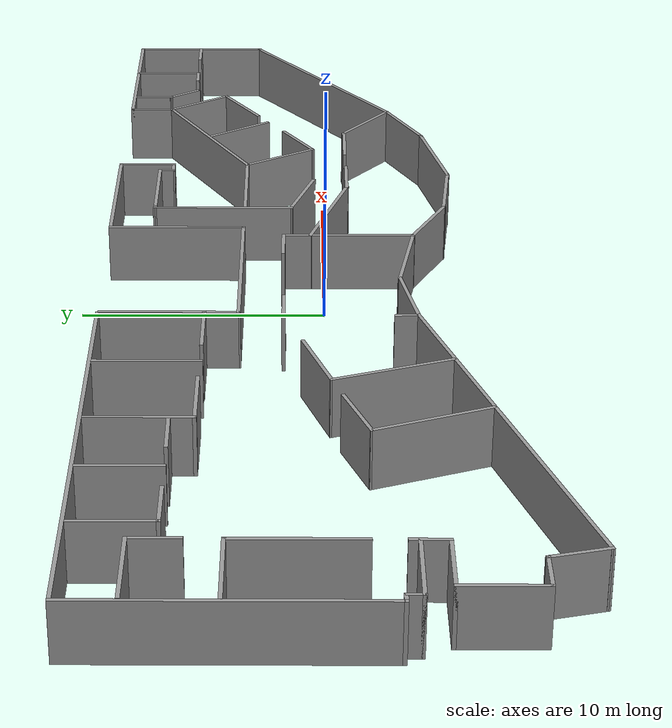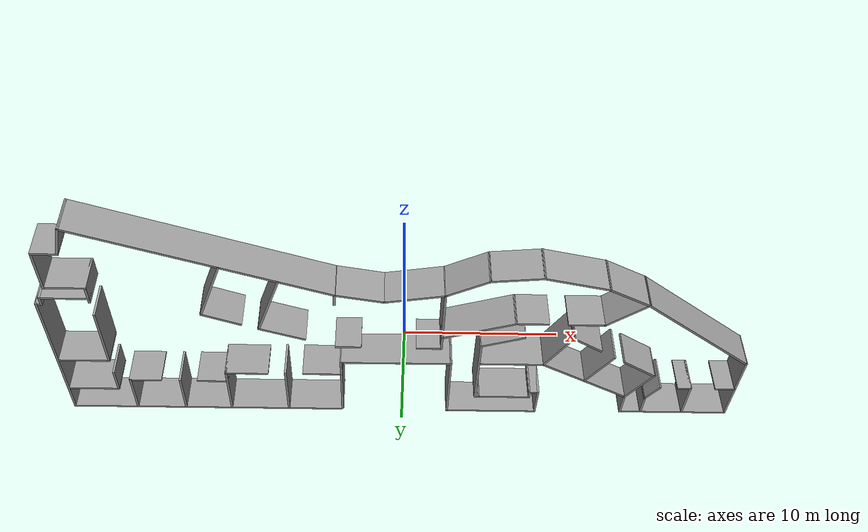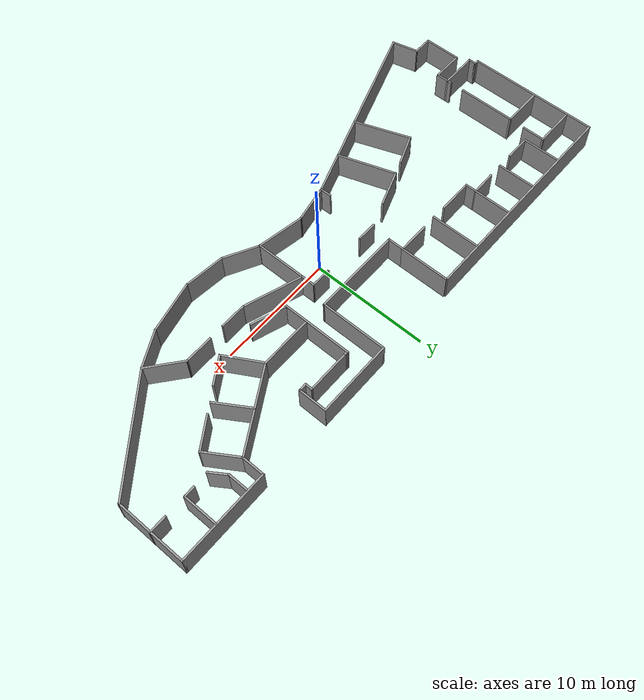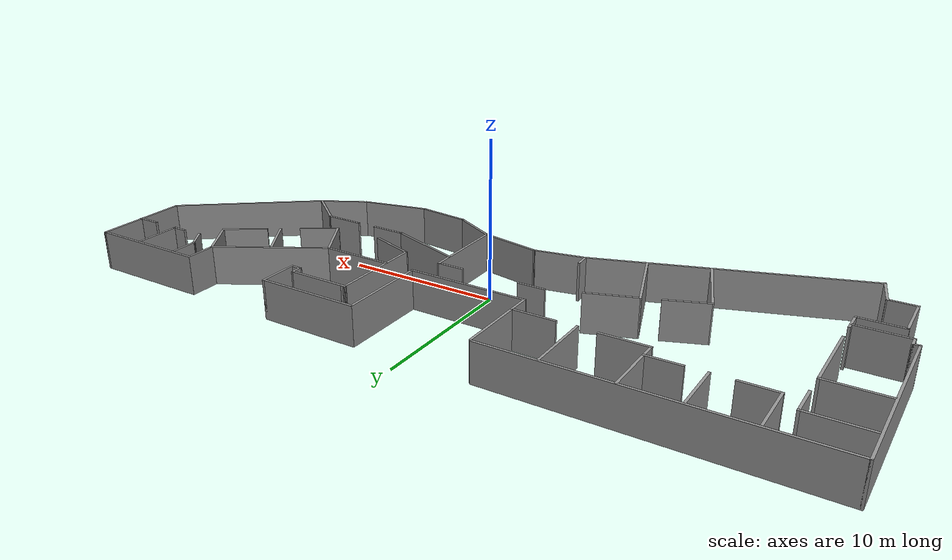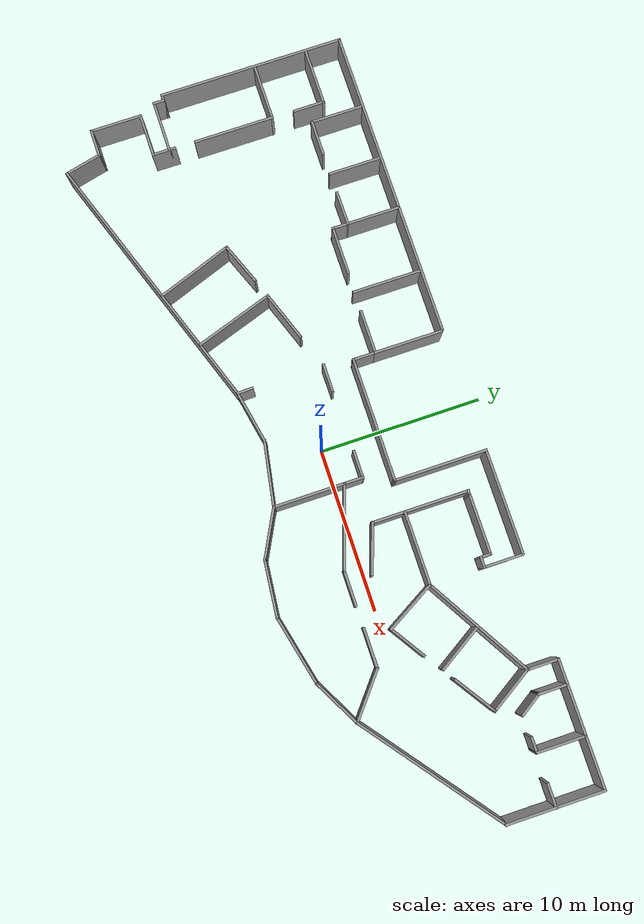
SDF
<?xml version='1.0'?>
<sdf version='1.7'>
  <model name='Office'>
    <pose>-0.008201 -0.15017 0 0 -0 0</pose>
    <link name='Wall_0'>
      <collision name='Wall_0_Collision'>
        <geometry>
          <box>
            <size>1.5 0.15 2.5</size>
          </box>
        </geometry>
        <pose>0 0 1.25 0 -0 0</pose>
      </collision>
      <visual name='Wall_0_Visual'>
        <pose>0 0 1.25 0 -0 0</pose>
        <geometry>
          <box>
            <size>1.5 0.15 2.5</size>
          </box>
        </geometry>
        <material>
          <script>
            <uri>file://media/materials/scripts/gazebo.material</uri>
            <name>Gazebo/Grey</name>
          </script>
          <ambient>1 1 1 1</ambient>
        </material>
        <meta>
          <layer>0</layer>
        </meta>
      </visual>
      <pose>-19.9946 -3.18864 0 0 -0 1.5708</pose>
    </link>
    <link name='Wall_100'>
      <collision name='Wall_100_Collision'>
        <geometry>
          <box>
            <size>4.46792 0.15 2.5</size>
          </box>
        </geometry>
        <pose>0 0 1.25 0 -0 0</pose>
      </collision>
      <visual name='Wall_100_Visual'>
        <pose>0 0 1.25 0 -0 0</pose>
        <geometry>
          <box>
            <size>4.46792 0.15 2.5</size>
          </box>
        </geometry>
        <material>
          <script>
            <uri>file://media/materials/scripts/gazebo.material</uri>
            <name>Gazebo/Grey</name>
          </script>
          <ambient>1 1 1 1</ambient>
        </material>
        <meta>
          <layer>0</layer>
        </meta>
      </visual>
      <pose>10.6963 -4.85422 0 0 -0 0.228635</pose>
    </link>
    <link name='Wall_101'>
      <collision name='Wall_101_Collision'>
        <geometry>
          <box>
            <size>3.29755 0.15 2.5</size>
          </box>
        </geometry>
        <pose>0 0 1.25 0 -0 0</pose>
      </collision>
      <visual name='Wall_101_Visual'>
        <pose>0 0 1.25 0 -0 0</pose>
        <geometry>
          <box>
            <size>3.29755 0.15 2.5</size>
          </box>
        </geometry>
        <material>
          <script>
            <uri>file://media/materials/scripts/gazebo.material</uri>
            <name>Gazebo/Grey</name>
          </script>
          <ambient>1 1 1 1</ambient>
        </material>
        <meta>
          <layer>0</layer>
        </meta>
      </visual>
      <pose>14.1877 -3.6243 0 0 -0 0.489957</pose>
    </link>
    <link name='Wall_103'>
      <collision name='Wall_103_Collision'>
        <geometry>
          <box>
            <size>7.38394 0.15 2.5</size>
          </box>
        </geometry>
        <pose>0 0 1.25 0 -0 0</pose>
      </collision>
      <visual name='Wall_103_Visual'>
        <pose>0 0 1.25 0 -0 0</pose>
        <geometry>
          <box>
            <size>7.38394 0.15 2.5</size>
          </box>
        </geometry>
        <material>
          <script>
            <uri>file://media/materials/scripts/gazebo.material</uri>
            <name>Gazebo/Grey</name>
          </script>
          <ambient>1 1 1 1</ambient>
        </material>
        <meta>
          <layer>0</layer>
        </meta>
      </visual>
      <pose>12.6994 5.35548 0 0 -0 0.533135</pose>
    </link>
    <link name='Wall_104'>
      <collision name='Wall_104_Collision'>
        <geometry>
          <box>
            <size>2 0.15 2.5</size>
          </box>
        </geometry>
        <pose>0 0 1.25 0 -0 0</pose>
      </collision>
      <visual name='Wall_104_Visual'>
        <pose>0 0 1.25 0 -0 0</pose>
        <geometry>
          <box>
            <size>2 0.15 2.5</size>
          </box>
        </geometry>
        <material>
          <script>
            <uri>file://media/materials/scripts/gazebo.material</uri>
            <name>Gazebo/Grey</name>
          </script>
          <ambient>1 1 1 1</ambient>
        </material>
        <meta>
          <layer>0</layer>
        </meta>
      </visual>
      <pose>15.8144 8.11875 0 0 -0 1.5708</pose>
    </link>
    <link name='Wall_105'>
      <collision name='Wall_105_Collision'>
        <geometry>
          <box>
            <size>7.75 0.15 2.5</size>
          </box>
        </geometry>
        <pose>0 0 1.25 0 -0 0</pose>
      </collision>
      <visual name='Wall_105_Visual'>
        <pose>0 0 1.25 0 -0 0</pose>
        <geometry>
          <box>
            <size>7.75 0.15 2.5</size>
          </box>
        </geometry>
        <material>
          <script>
            <uri>file://media/materials/scripts/gazebo.material</uri>
            <name>Gazebo/Grey</name>
          </script>
          <ambient>1 1 1 1</ambient>
        </material>
        <meta>
          <layer>0</layer>
        </meta>
      </visual>
      <pose>19.6144 9.04375 0 0 -0 0</pose>
    </link>
    <link name='Wall_106'>
      <collision name='Wall_106_Collision'>
        <geometry>
          <box>
            <size>6 0.15 2.5</size>
          </box>
        </geometry>
        <pose>0 0 1.25 0 -0 0</pose>
      </collision>
      <visual name='Wall_106_Visual'>
        <pose>0 0 1.25 0 -0 0</pose>
        <geometry>
          <box>
            <size>6 0.15 2.5</size>
          </box>
        </geometry>
        <material>
          <script>
            <uri>file://media/materials/scripts/gazebo.material</uri>
            <name>Gazebo/Grey</name>
          </script>
          <ambient>1 1 1 1</ambient>
        </material>
        <meta>
          <layer>0</layer>
        </meta>
      </visual>
      <pose>23.4144 6.11875 0 0 -0 -1.5708</pose>
    </link>
    <link name='Wall_107'>
      <collision name='Wall_107_Collision'>
        <geometry>
          <box>
            <size>10.0682 0.15 2.5</size>
          </box>
        </geometry>
        <pose>0 0 1.25 0 -0 0</pose>
      </collision>
      <visual name='Wall_107_Visual'>
        <pose>0 0 1.25 0 -0 0</pose>
        <geometry>
          <box>
            <size>10.0682 0.15 2.5</size>
          </box>
        </geometry>
        <material>
          <script>
            <uri>file://media/materials/scripts/gazebo.material</uri>
            <name>Gazebo/Grey</name>
          </script>
          <ambient>1 1 1 1</ambient>
        </material>
        <meta>
          <layer>0</layer>
        </meta>
      </visual>
      <pose>19.4954 0.155029 0 0 -0 -2.48205</pose>
    </link>
    <link name='Wall_109'>
      <collision name='Wall_109_Collision'>
        <geometry>
          <box>
            <size>1.5 0.15 2.5</size>
          </box>
        </geometry>
        <pose>0 0 1.25 0 -0 0</pose>
      </collision>
      <visual name='Wall_109_Visual'>
        <pose>0 0 1.25 0 -0 0</pose>
        <geometry>
          <box>
            <size>1.5 0.15 2.5</size>
          </box>
        </geometry>
        <material>
          <script>
            <uri>file://media/materials/scripts/gazebo.material</uri>
            <name>Gazebo/Grey</name>
          </script>
          <ambient>1 1 1 1</ambient>
        </material>
        <meta>
          <layer>0</layer>
        </meta>
      </visual>
      <pose>22.757 6.13575 0 0 -0 3.14159</pose>
    </link>
    <link name='Wall_11'>
      <collision name='Wall_11_Collision'>
        <geometry>
          <box>
            <size>2 0.15 2.5</size>
          </box>
        </geometry>
        <pose>0 0 1.25 0 -0 0</pose>
      </collision>
      <visual name='Wall_11_Visual'>
        <pose>0 0 1.25 0 -0 0</pose>
        <geometry>
          <box>
            <size>2 0.15 2.5</size>
          </box>
        </geometry>
        <material>
          <script>
            <uri>file://media/materials/scripts/gazebo.material</uri>
            <name>Gazebo/Grey</name>
          </script>
          <ambient>1 1 1 1</ambient>
        </material>
        <meta>
          <layer>0</layer>
        </meta>
      </visual>
      <pose>-19.9418 5.9961 0 0 -0 1.5708</pose>
    </link>
    <link name='Wall_111'>
      <collision name='Wall_111_Collision'>
        <geometry>
          <box>
            <size>3 0.15 2.5</size>
          </box>
        </geometry>
        <pose>0 0 1.25 0 -0 0</pose>
      </collision>
      <visual name='Wall_111_Visual'>
        <pose>0 0 1.25 0 -0 0</pose>
        <geometry>
          <box>
            <size>3 0.15 2.5</size>
          </box>
        </geometry>
        <material>
          <script>
            <uri>file://media/materials/scripts/gazebo.material</uri>
            <name>Gazebo/Grey</name>
          </script>
          <ambient>1 1 1 1</ambient>
        </material>
        <meta>
          <layer>0</layer>
        </meta>
      </visual>
      <pose>20.2844 7.56075 0 0 -0 1.5708</pose>
    </link>
    <link name='Wall_113'>
      <collision name='Wall_113_Collision'>
        <geometry>
          <box>
            <size>1 0.15 2.5</size>
          </box>
        </geometry>
        <pose>0 0 1.25 0 -0 0</pose>
      </collision>
      <visual name='Wall_113_Visual'>
        <pose>0 0 1.25 0 -0 0</pose>
        <geometry>
          <box>
            <size>1 0.15 2.5</size>
          </box>
        </geometry>
        <material>
          <script>
            <uri>file://media/materials/scripts/gazebo.material</uri>
            <name>Gazebo/Grey</name>
          </script>
          <ambient>1 1 1 1</ambient>
        </material>
        <meta>
          <layer>0</layer>
        </meta>
      </visual>
      <pose>19.8594 6.13575 0 0 -0 3.14159</pose>
    </link>
    <link name='Wall_115'>
      <collision name='Wall_115_Collision'>
        <geometry>
          <box>
            <size>1.63921 0.15 2.5</size>
          </box>
        </geometry>
        <pose>0 0 1.25 0 -0 0</pose>
      </collision>
      <visual name='Wall_115_Visual'>
        <pose>0 0 1.25 0 -0 0</pose>
        <geometry>
          <box>
            <size>1.63921 0.15 2.5</size>
          </box>
        </geometry>
        <material>
          <script>
            <uri>file://media/materials/scripts/gazebo.material</uri>
            <name>Gazebo/Grey</name>
          </script>
          <ambient>1 1 1 1</ambient>
        </material>
        <meta>
          <layer>0</layer>
        </meta>
      </visual>
      <pose>17.7056 6.70443 0 0 -0 2.15387</pose>
    </link>
    <link name='Wall_116'>
      <collision name='Wall_116_Collision'>
        <geometry>
          <box>
            <size>1.75 0.15 2.5</size>
          </box>
        </geometry>
        <pose>0 0 1.25 0 -0 0</pose>
      </collision>
      <visual name='Wall_116_Visual'>
        <pose>0 0 1.25 0 -0 0</pose>
        <geometry>
          <box>
            <size>1.75 0.15 2.5</size>
          </box>
        </geometry>
        <material>
          <script>
            <uri>file://media/materials/scripts/gazebo.material</uri>
            <name>Gazebo/Grey</name>
          </script>
          <ambient>1 1 1 1</ambient>
        </material>
        <meta>
          <layer>0</layer>
        </meta>
      </visual>
      <pose>17.2956 8.126 0 0 -0 1.5708</pose>
    </link>
    <link name='Wall_120'>
      <collision name='Wall_120_Collision'>
        <geometry>
          <box>
            <size>3.12195 0.15 2.5</size>
          </box>
        </geometry>
        <pose>0 0 1.25 0 -0 0</pose>
      </collision>
      <visual name='Wall_120_Visual'>
        <pose>0 0 1.25 0 -0 0</pose>
        <geometry>
          <box>
            <size>3.12195 0.15 2.5</size>
          </box>
        </geometry>
        <material>
          <script>
            <uri>file://media/materials/scripts/gazebo.material</uri>
            <name>Gazebo/Grey</name>
          </script>
          <ambient>1 1 1 1</ambient>
        </material>
        <meta>
          <layer>0</layer>
        </meta>
      </visual>
      <pose>16.6079 5.93738 0 0 -0 -1.00748</pose>
    </link>
    <link name='Wall_121'>
      <collision name='Wall_121_Collision'>
        <geometry>
          <box>
            <size>2.91564 0.15 2.5</size>
          </box>
        </geometry>
        <pose>0 0 1.25 0 -0 0</pose>
      </collision>
      <visual name='Wall_121_Visual'>
        <pose>0 0 1.25 0 -0 0</pose>
        <geometry>
          <box>
            <size>2.91564 0.15 2.5</size>
          </box>
        </geometry>
        <material>
          <script>
            <uri>file://media/materials/scripts/gazebo.material</uri>
            <name>Gazebo/Grey</name>
          </script>
          <ambient>1 1 1 1</ambient>
        </material>
        <meta>
          <layer>0</layer>
        </meta>
      </visual>
      <pose>16.2508 3.91395 0 0 -0 -2.55359</pose>
    </link>
    <link name='Wall_123'>
      <collision name='Wall_123_Collision'>
        <geometry>
          <box>
            <size>3.23967 0.15 2.5</size>
          </box>
        </geometry>
        <pose>0 0 1.25 0 -0 0</pose>
      </collision>
      <visual name='Wall_123_Visual'>
        <pose>0 0 1.25 0 -0 0</pose>
        <geometry>
          <box>
            <size>3.23967 0.15 2.5</size>
          </box>
        </geometry>
        <material>
          <script>
            <uri>file://media/materials/scripts/gazebo.material</uri>
            <name>Gazebo/Grey</name>
          </script>
          <ambient>1 1 1 1</ambient>
        </material>
        <meta>
          <layer>0</layer>
        </meta>
      </visual>
      <pose>13.4868 4.00653 0 0 -0 -1.01129</pose>
    </link>
    <link name='Wall_125'>
      <collision name='Wall_125_Collision'>
        <geometry>
          <box>
            <size>2.51976 0.15 2.5</size>
          </box>
        </geometry>
        <pose>0 0 1.25 0 -0 0</pose>
      </collision>
      <visual name='Wall_125_Visual'>
        <pose>0 0 1.25 0 -0 0</pose>
        <geometry>
          <box>
            <size>2.51976 0.15 2.5</size>
          </box>
        </geometry>
        <material>
          <script>
            <uri>file://media/materials/scripts/gazebo.material</uri>
            <name>Gazebo/Grey</name>
          </script>
          <ambient>1 1 1 1</ambient>
        </material>
        <meta>
          <layer>0</layer>
        </meta>
      </visual>
      <pose>12.2541 1.25989 0 0 -0 0.574485</pose>
    </link>
    <link name='Wall_18'>
      <collision name='Wall_18_Collision'>
        <geometry>
          <box>
            <size>2.75 0.15 2.5</size>
          </box>
        </geometry>
        <pose>0 0 1.25 0 -0 0</pose>
      </collision>
      <visual name='Wall_18_Visual'>
        <pose>0 0 1.25 0 -0 0</pose>
        <geometry>
          <box>
            <size>2.75 0.15 2.5</size>
          </box>
        </geometry>
        <material>
          <script>
            <uri>file://media/materials/scripts/gazebo.material</uri>
            <name>Gazebo/Grey</name>
          </script>
          <ambient>1 1 1 1</ambient>
        </material>
        <meta>
          <layer>0</layer>
        </meta>
      </visual>
      <pose>-21.2946 -3.86364 0 0 -0 3.14159</pose>
    </link>
    <link name='Wall_19'>
      <collision name='Wall_19_Collision'>
        <geometry>
          <box>
            <size>3.25 0.15 2.5</size>
          </box>
        </geometry>
        <pose>0 0 1.25 0 -0 0</pose>
      </collision>
      <visual name='Wall_19_Visual'>
        <pose>0 0 1.25 0 -0 0</pose>
        <geometry>
          <box>
            <size>3.25 0.15 2.5</size>
          </box>
        </geometry>
        <material>
          <script>
            <uri>file://media/materials/scripts/gazebo.material</uri>
            <name>Gazebo/Grey</name>
          </script>
          <ambient>1 1 1 1</ambient>
        </material>
        <meta>
          <layer>0</layer>
        </meta>
      </visual>
      <pose>-22.5946 -5.41364 0 0 -0 -1.5708</pose>
    </link>
    <link name='Wall_2'>
      <collision name='Wall_2_Collision'>
        <geometry>
          <box>
            <size>3.25 0.15 2.5</size>
          </box>
        </geometry>
        <pose>0 0 1.25 0 -0 0</pose>
      </collision>
      <visual name='Wall_2_Visual'>
        <pose>0 0 1.25 0 -0 0</pose>
        <geometry>
          <box>
            <size>3.25 0.15 2.5</size>
          </box>
        </geometry>
        <material>
          <script>
            <uri>file://media/materials/scripts/gazebo.material</uri>
            <name>Gazebo/Grey</name>
          </script>
          <ambient>1 1 1 1</ambient>
        </material>
        <meta>
          <layer>0</layer>
        </meta>
      </visual>
      <pose>-21.5446 -2.84921 0 0 -0 3.14159</pose>
    </link>
    <link name='Wall_23'>
      <collision name='Wall_23_Collision'>
        <geometry>
          <box>
            <size>1.75 0.15 2.5</size>
          </box>
        </geometry>
        <pose>0 0 1.25 0 -0 0</pose>
      </collision>
      <visual name='Wall_23_Visual'>
        <pose>0 0 1.25 0 -0 0</pose>
        <geometry>
          <box>
            <size>1.75 0.15 2.5</size>
          </box>
        </geometry>
        <material>
          <script>
            <uri>file://media/materials/scripts/gazebo.material</uri>
            <name>Gazebo/Grey</name>
          </script>
          <ambient>1 1 1 1</ambient>
        </material>
        <meta>
          <layer>0</layer>
        </meta>
      </visual>
      <pose>-21.7946 -6.96364 0 0 -0 0</pose>
    </link>
    <link name='Wall_24'>
      <collision name='Wall_24_Collision'>
        <geometry>
          <box>
            <size>2.3739 0.15 2.5</size>
          </box>
        </geometry>
        <pose>0 0 1.25 0 -0 0</pose>
      </collision>
      <visual name='Wall_24_Visual'>
        <pose>0 0 1.25 0 -0 0</pose>
        <geometry>
          <box>
            <size>2.3739 0.15 2.5</size>
          </box>
        </geometry>
        <material>
          <script>
            <uri>file://media/materials/scripts/gazebo.material</uri>
            <name>Gazebo/Grey</name>
          </script>
          <ambient>1 1 1 1</ambient>
        </material>
        <meta>
          <layer>0</layer>
        </meta>
      </visual>
      <pose>-20.7369 -8.0453 0 0 -0 -1.33685</pose>
    </link>
    <link name='Wall_25'>
      <collision name='Wall_25_Collision'>
        <geometry>
          <box>
            <size>17.14 0.15 2.5</size>
          </box>
        </geometry>
        <pose>0 0 1.25 0 -0 0</pose>
      </collision>
      <visual name='Wall_25_Visual'>
        <pose>0 0 1.25 0 -0 0</pose>
        <geometry>
          <box>
            <size>17.14 0.15 2.5</size>
          </box>
        </geometry>
        <material>
          <script>
            <uri>file://media/materials/scripts/gazebo.material</uri>
            <name>Gazebo/Grey</name>
          </script>
          <ambient>1 1 1 1</ambient>
        </material>
        <meta>
          <layer>0</layer>
        </meta>
      </visual>
      <pose>-12.4647 -6.31004 0 0 -0 0.337997</pose>
    </link>
    <link name='Wall_26'>
      <collision name='Wall_26_Collision'>
        <geometry>
          <box>
            <size>3.32984 0.15 2.5</size>
          </box>
        </geometry>
        <pose>0 0 1.25 0 -0 0</pose>
      </collision>
      <visual name='Wall_26_Visual'>
        <pose>0 0 1.25 0 -0 0</pose>
        <geometry>
          <box>
            <size>3.32984 0.15 2.5</size>
          </box>
        </geometry>
        <material>
          <script>
            <uri>file://media/materials/scripts/gazebo.material</uri>
            <name>Gazebo/Grey</name>
          </script>
          <ambient>1 1 1 1</ambient>
        </material>
        <meta>
          <layer>0</layer>
        </meta>
      </visual>
      <pose>-2.88984 -3.18894 0 0 -0 0.192502</pose>
    </link>
    <link name='Wall_28'>
      <collision name='Wall_28_Collision'>
        <geometry>
          <box>
            <size>4.07246 0.15 2.5</size>
          </box>
        </geometry>
        <pose>0 0 1.25 0 -0 0</pose>
      </collision>
      <visual name='Wall_28_Visual'>
        <pose>0 0 1.25 0 -0 0</pose>
        <geometry>
          <box>
            <size>4.07246 0.15 2.5</size>
          </box>
        </geometry>
        <material>
          <script>
            <uri>file://media/materials/scripts/gazebo.material</uri>
            <name>Gazebo/Grey</name>
          </script>
          <ambient>1 1 1 1</ambient>
        </material>
        <meta>
          <layer>0</layer>
        </meta>
      </visual>
      <pose>0.601556 -3.22861 0 0 -0 -0.176235</pose>
    </link>
    <link name='Wall_3'>
      <collision name='Wall_3_Collision'>
        <geometry>
          <box>
            <size>0.75 0.15 2.5</size>
          </box>
        </geometry>
        <pose>0 0 1.25 0 -0 0</pose>
      </collision>
      <visual name='Wall_3_Visual'>
        <pose>0 0 1.25 0 -0 0</pose>
        <geometry>
          <box>
            <size>0.75 0.15 2.5</size>
          </box>
        </geometry>
        <material>
          <script>
            <uri>file://media/materials/scripts/gazebo.material</uri>
            <name>Gazebo/Grey</name>
          </script>
          <ambient>1 1 1 1</ambient>
        </material>
        <meta>
          <layer>0</layer>
        </meta>
      </visual>
      <pose>-23.0946 -2.54921 0 0 -0 1.5708</pose>
    </link>
    <link name='Wall_30'>
      <collision name='Wall_30_Collision'>
        <geometry>
          <box>
            <size>1.02285 0.15 2.5</size>
          </box>
        </geometry>
        <pose>0 0 1.25 0 -0 0</pose>
      </collision>
      <visual name='Wall_30_Visual'>
        <pose>0 0 1.25 0 -0 0</pose>
        <geometry>
          <box>
            <size>1.02285 0.15 2.5</size>
          </box>
        </geometry>
        <material>
          <script>
            <uri>file://media/materials/scripts/gazebo.material</uri>
            <name>Gazebo/Grey</name>
          </script>
          <ambient>1 1 1 1</ambient>
        </material>
        <meta>
          <layer>0</layer>
        </meta>
      </visual>
      <pose>-4.49007 -3.05669 0 0 -0 -1.5405</pose>
    </link>
    <link name='Wall_32'>
      <collision name='Wall_32_Collision'>
        <geometry>
          <box>
            <size>5.05981 0.15 2.5</size>
          </box>
        </geometry>
        <pose>0 0 1.25 0 -0 0</pose>
      </collision>
      <visual name='Wall_32_Visual'>
        <pose>0 0 1.25 0 -0 0</pose>
        <geometry>
          <box>
            <size>5.05981 0.15 2.5</size>
          </box>
        </geometry>
        <material>
          <script>
            <uri>file://media/materials/scripts/gazebo.material</uri>
            <name>Gazebo/Grey</name>
          </script>
          <ambient>1 1 1 1</ambient>
        </material>
        <meta>
          <layer>0</layer>
        </meta>
      </visual>
      <pose>-8.72207 -2.35576 0 0 -0 1.89425</pose>
    </link>
    <link name='Wall_33'>
      <collision name='Wall_33_Collision'>
        <geometry>
          <box>
            <size>3.27076 0.15 2.5</size>
          </box>
        </geometry>
        <pose>0 0 1.25 0 -0 0</pose>
      </collision>
      <visual name='Wall_33_Visual'>
        <pose>0 0 1.25 0 -0 0</pose>
        <geometry>
          <box>
            <size>3.27076 0.15 2.5</size>
          </box>
        </geometry>
        <material>
          <script>
            <uri>file://media/materials/scripts/gazebo.material</uri>
            <name>Gazebo/Grey</name>
          </script>
          <ambient>1 1 1 1</ambient>
        </material>
        <meta>
          <layer>0</layer>
        </meta>
      </visual>
      <pose>-8.03437 0.500839 0 0 -0 0.345875</pose>
    </link>
    <link name='Wall_35'>
      <collision name='Wall_35_Collision'>
        <geometry>
          <box>
            <size>1.75 0.15 2.5</size>
          </box>
        </geometry>
        <pose>0 0 1.25 0 -0 0</pose>
      </collision>
      <visual name='Wall_35_Visual'>
        <pose>0 0 1.25 0 -0 0</pose>
        <geometry>
          <box>
            <size>1.75 0.15 2.5</size>
          </box>
        </geometry>
        <material>
          <script>
            <uri>file://media/materials/scripts/gazebo.material</uri>
            <name>Gazebo/Grey</name>
          </script>
          <ambient>1 1 1 1</ambient>
        </material>
        <meta>
          <layer>0</layer>
        </meta>
      </visual>
      <pose>-3.70329 1.79689 0 0 -0 0</pose>
    </link>
    <link name='Wall_37'>
      <collision name='Wall_37_Collision'>
        <geometry>
          <box>
            <size>1.75 0.15 2.5</size>
          </box>
        </geometry>
        <pose>0 0 1.25 0 -0 0</pose>
      </collision>
      <visual name='Wall_37_Visual'>
        <pose>0 0 1.25 0 -0 0</pose>
        <geometry>
          <box>
            <size>1.75 0.15 2.5</size>
          </box>
        </geometry>
        <material>
          <script>
            <uri>file://media/materials/scripts/gazebo.material</uri>
            <name>Gazebo/Grey</name>
          </script>
          <ambient>1 1 1 1</ambient>
        </material>
        <meta>
          <layer>0</layer>
        </meta>
      </visual>
      <pose>1.71896 1.84979 0 0 -0 0</pose>
    </link>
    <link name='Wall_38'>
      <collision name='Wall_38_Collision'>
        <geometry>
          <box>
            <size>5.57227 0.15 2.5</size>
          </box>
        </geometry>
        <pose>0 0 1.25 0 -0 0</pose>
      </collision>
      <visual name='Wall_38_Visual'>
        <pose>0 0 1.25 0 -0 0</pose>
        <geometry>
          <box>
            <size>5.57227 0.15 2.5</size>
          </box>
        </geometry>
        <material>
          <script>
            <uri>file://media/materials/scripts/gazebo.material</uri>
            <name>Gazebo/Grey</name>
          </script>
          <ambient>1 1 1 1</ambient>
        </material>
        <meta>
          <layer>0</layer>
        </meta>
      </visual>
      <pose>2.52568 -0.861336 0 0 -0 -1.56832</pose>
    </link>
    <link name='Wall_4'>
      <collision name='Wall_4_Collision'>
        <geometry>
          <box>
            <size>0.5 0.15 2.5</size>
          </box>
        </geometry>
        <pose>0 0 1.25 0 -0 0</pose>
      </collision>
      <visual name='Wall_4_Visual'>
        <pose>0 0 1.25 0 -0 0</pose>
        <geometry>
          <box>
            <size>0.5 0.15 2.5</size>
          </box>
        </geometry>
        <material>
          <script>
            <uri>file://media/materials/scripts/gazebo.material</uri>
            <name>Gazebo/Grey</name>
          </script>
          <ambient>1 1 1 1</ambient>
        </material>
        <meta>
          <layer>0</layer>
        </meta>
      </visual>
      <pose>-23.2696 -2.24921 0 0 -0 3.14159</pose>
    </link>
    <link name='Wall_40'>
      <collision name='Wall_40_Collision'>
        <geometry>
          <box>
            <size>2.78729 0.15 2.5</size>
          </box>
        </geometry>
        <pose>0 0 1.25 0 -0 0</pose>
      </collision>
      <visual name='Wall_40_Visual'>
        <pose>0 0 1.25 0 -0 0</pose>
        <geometry>
          <box>
            <size>2.78729 0.15 2.5</size>
          </box>
        </geometry>
        <material>
          <script>
            <uri>file://media/materials/scripts/gazebo.material</uri>
            <name>Gazebo/Grey</name>
          </script>
          <ambient>1 1 1 1</ambient>
        </material>
        <meta>
          <layer>0</layer>
        </meta>
      </visual>
      <pose>-11.8735 -0.939152 0 0 -0 -2.76434</pose>
    </link>
    <link name='Wall_41'>
      <collision name='Wall_41_Collision'>
        <geometry>
          <box>
            <size>4.92052 0.15 2.5</size>
          </box>
        </geometry>
        <pose>0 0 1.25 0 -0 0</pose>
      </collision>
      <visual name='Wall_41_Visual'>
        <pose>0 0 1.25 0 -0 0</pose>
        <geometry>
          <box>
            <size>4.92052 0.15 2.5</size>
          </box>
        </geometry>
        <material>
          <script>
            <uri>file://media/materials/scripts/gazebo.material</uri>
            <name>Gazebo/Grey</name>
          </script>
          <ambient>1 1 1 1</ambient>
        </material>
        <meta>
          <layer>0</layer>
        </meta>
      </visual>
      <pose>-12.2898 -3.66856 0 0 -0 -1.22451</pose>
    </link>
    <link name='Wall_43'>
      <collision name='Wall_43_Collision'>
        <geometry>
          <box>
            <size>19.25 0.15 2.5</size>
          </box>
        </geometry>
        <pose>0 0 1.25 0 -0 0</pose>
      </collision>
      <visual name='Wall_43_Visual'>
        <pose>0 0 1.25 0 -0 0</pose>
        <geometry>
          <box>
            <size>19.25 0.15 2.5</size>
          </box>
        </geometry>
        <material>
          <script>
            <uri>file://media/materials/scripts/gazebo.material</uri>
            <name>Gazebo/Grey</name>
          </script>
          <ambient>1 1 1 1</ambient>
        </material>
        <meta>
          <layer>0</layer>
        </meta>
      </visual>
      <pose>-13.8946 9.10079 0 0 -0 0</pose>
    </link>
    <link name='Wall_47'>
      <collision name='Wall_47_Collision'>
        <geometry>
          <box>
            <size>3.5 0.15 2.5</size>
          </box>
        </geometry>
        <pose>0 0 1.25 0 -0 0</pose>
      </collision>
      <visual name='Wall_47_Visual'>
        <pose>0 0 1.25 0 -0 0</pose>
        <geometry>
          <box>
            <size>3.5 0.15 2.5</size>
          </box>
        </geometry>
        <material>
          <script>
            <uri>file://media/materials/scripts/gazebo.material</uri>
            <name>Gazebo/Grey</name>
          </script>
          <ambient>1 1 1 1</ambient>
        </material>
        <meta>
          <layer>0</layer>
        </meta>
      </visual>
      <pose>-21.6168 6.9211 0 0 -0 3.14159</pose>
    </link>
    <link name='Wall_49'>
      <collision name='Wall_49_Collision'>
        <geometry>
          <box>
            <size>2.25 0.15 2.5</size>
          </box>
        </geometry>
        <pose>0 0 1.25 0 -0 0</pose>
      </collision>
      <visual name='Wall_49_Visual'>
        <pose>0 0 1.25 0 -0 0</pose>
        <geometry>
          <box>
            <size>2.25 0.15 2.5</size>
          </box>
        </geometry>
        <material>
          <script>
            <uri>file://media/materials/scripts/gazebo.material</uri>
            <name>Gazebo/Grey</name>
          </script>
          <ambient>1 1 1 1</ambient>
        </material>
        <meta>
          <layer>0</layer>
        </meta>
      </visual>
      <pose>-17.8959 5.86728 0 0 -0 0</pose>
    </link>
    <link name='Wall_5'>
      <collision name='Wall_5_Collision'>
        <geometry>
          <box>
            <size>11.5 0.15 2.5</size>
          </box>
        </geometry>
        <pose>0 0 1.25 0 -0 0</pose>
      </collision>
      <visual name='Wall_5_Visual'>
        <pose>0 0 1.25 0 -0 0</pose>
        <geometry>
          <box>
            <size>11.5 0.15 2.5</size>
          </box>
        </geometry>
        <material>
          <script>
            <uri>file://media/materials/scripts/gazebo.material</uri>
            <name>Gazebo/Grey</name>
          </script>
          <ambient>1 1 1 1</ambient>
        </material>
        <meta>
          <layer>0</layer>
        </meta>
      </visual>
      <pose>-23.4446 3.42579 0 0 -0 1.5708</pose>
    </link>
    <link name='Wall_52'>
      <collision name='Wall_52_Collision'>
        <geometry>
          <box>
            <size>3.25 0.15 2.5</size>
          </box>
        </geometry>
        <pose>0 0 1.25 0 -0 0</pose>
      </collision>
      <visual name='Wall_52_Visual'>
        <pose>0 0 1.25 0 -0 0</pose>
        <geometry>
          <box>
            <size>3.25 0.15 2.5</size>
          </box>
        </geometry>
        <material>
          <script>
            <uri>file://media/materials/scripts/gazebo.material</uri>
            <name>Gazebo/Grey</name>
          </script>
          <ambient>1 1 1 1</ambient>
        </material>
        <meta>
          <layer>0</layer>
        </meta>
      </visual>
      <pose>-18.9459 7.41728 0 0 -0 1.5708</pose>
    </link>
    <link name='Wall_54'>
      <collision name='Wall_54_Collision'>
        <geometry>
          <box>
            <size>3.25 0.15 2.5</size>
          </box>
        </geometry>
        <pose>0 0 1.25 0 -0 0</pose>
      </collision>
      <visual name='Wall_54_Visual'>
        <pose>0 0 1.25 0 -0 0</pose>
        <geometry>
          <box>
            <size>3.25 0.15 2.5</size>
          </box>
        </geometry>
        <material>
          <script>
            <uri>file://media/materials/scripts/gazebo.material</uri>
            <name>Gazebo/Grey</name>
          </script>
          <ambient>1 1 1 1</ambient>
        </material>
        <meta>
          <layer>0</layer>
        </meta>
      </visual>
      <pose>-15.4959 7.42108 0 0 -0 1.5708</pose>
    </link>
    <link name='Wall_57'>
      <collision name='Wall_57_Collision'>
        <geometry>
          <box>
            <size>4.25 0.15 2.5</size>
          </box>
        </geometry>
        <pose>0 0 1.25 0 -0 0</pose>
      </collision>
      <visual name='Wall_57_Visual'>
        <pose>0 0 1.25 0 -0 0</pose>
        <geometry>
          <box>
            <size>4.25 0.15 2.5</size>
          </box>
        </geometry>
        <material>
          <script>
            <uri>file://media/materials/scripts/gazebo.material</uri>
            <name>Gazebo/Grey</name>
          </script>
          <ambient>1 1 1 1</ambient>
        </material>
        <meta>
          <layer>0</layer>
        </meta>
      </visual>
      <pose>-12.2098 6.99996 0 0 -0 1.5708</pose>
    </link>
    <link name='Wall_59'>
      <collision name='Wall_59_Collision'>
        <geometry>
          <box>
            <size>2.16747 0.15 2.5</size>
          </box>
        </geometry>
        <pose>0 0 1.25 0 -0 0</pose>
      </collision>
      <visual name='Wall_59_Visual'>
        <pose>0 0 1.25 0 -0 0</pose>
        <geometry>
          <box>
            <size>2.16747 0.15 2.5</size>
          </box>
        </geometry>
        <material>
          <script>
            <uri>file://media/materials/scripts/gazebo.material</uri>
            <name>Gazebo/Grey</name>
          </script>
          <ambient>1 1 1 1</ambient>
        </material>
        <meta>
          <layer>0</layer>
        </meta>
      </visual>
      <pose>-13.2184 5.88039 0 0 -0 0.00862</pose>
    </link>
    <link name='Wall_61'>
      <collision name='Wall_61_Collision'>
        <geometry>
          <box>
            <size>3 0.15 2.5</size>
          </box>
        </geometry>
        <pose>0 0 1.25 0 -0 0</pose>
      </collision>
      <visual name='Wall_61_Visual'>
        <pose>0 0 1.25 0 -0 0</pose>
        <geometry>
          <box>
            <size>3 0.15 2.5</size>
          </box>
        </geometry>
        <material>
          <script>
            <uri>file://media/materials/scripts/gazebo.material</uri>
            <name>Gazebo/Grey</name>
          </script>
          <ambient>1 1 1 1</ambient>
        </material>
        <meta>
          <layer>0</layer>
        </meta>
      </visual>
      <pose>-10.7848 4.94996 0 0 -0 0</pose>
    </link>
    <link name='Wall_63'>
      <collision name='Wall_63_Collision'>
        <geometry>
          <box>
            <size>4.25 0.15 2.5</size>
          </box>
        </geometry>
        <pose>0 0 1.25 0 -0 0</pose>
      </collision>
      <visual name='Wall_63_Visual'>
        <pose>0 0 1.25 0 -0 0</pose>
        <geometry>
          <box>
            <size>4.25 0.15 2.5</size>
          </box>
        </geometry>
        <material>
          <script>
            <uri>file://media/materials/scripts/gazebo.material</uri>
            <name>Gazebo/Grey</name>
          </script>
          <ambient>1 1 1 1</ambient>
        </material>
        <meta>
          <layer>0</layer>
        </meta>
      </visual>
      <pose>-8.11114 6.93816 0 0 -0 1.5708</pose>
    </link>
    <link name='Wall_65'>
      <collision name='Wall_65_Collision'>
        <geometry>
          <box>
            <size>2.75 0.15 2.5</size>
          </box>
        </geometry>
        <pose>0 0 1.25 0 -0 0</pose>
      </collision>
      <visual name='Wall_65_Visual'>
        <pose>0 0 1.25 0 -0 0</pose>
        <geometry>
          <box>
            <size>2.75 0.15 2.5</size>
          </box>
        </geometry>
        <material>
          <script>
            <uri>file://media/materials/scripts/gazebo.material</uri>
            <name>Gazebo/Grey</name>
          </script>
          <ambient>1 1 1 1</ambient>
        </material>
        <meta>
          <layer>0</layer>
        </meta>
      </visual>
      <pose>-5.54614 4.91116 0 0 -0 0</pose>
    </link>
    <link name='Wall_66'>
      <collision name='Wall_66_Collision'>
        <geometry>
          <box>
            <size>4.25 0.15 2.5</size>
          </box>
        </geometry>
        <pose>0 0 1.25 0 -0 0</pose>
      </collision>
      <visual name='Wall_66_Visual'>
        <pose>0 0 1.25 0 -0 0</pose>
        <geometry>
          <box>
            <size>4.25 0.15 2.5</size>
          </box>
        </geometry>
        <material>
          <script>
            <uri>file://media/materials/scripts/gazebo.material</uri>
            <name>Gazebo/Grey</name>
          </script>
          <ambient>1 1 1 1</ambient>
        </material>
        <meta>
          <layer>0</layer>
        </meta>
      </visual>
      <pose>-4.24614 6.96116 0 0 -0 1.5708</pose>
    </link>
    <link name='Wall_69'>
      <collision name='Wall_69_Collision'>
        <geometry>
          <box>
            <size>1.5 0.15 2.5</size>
          </box>
        </geometry>
        <pose>0 0 1.25 0 -0 0</pose>
      </collision>
      <visual name='Wall_69_Visual'>
        <pose>0 0 1.25 0 -0 0</pose>
        <geometry>
          <box>
            <size>1.5 0.15 2.5</size>
          </box>
        </geometry>
        <material>
          <script>
            <uri>file://media/materials/scripts/gazebo.material</uri>
            <name>Gazebo/Grey</name>
          </script>
          <ambient>1 1 1 1</ambient>
        </material>
        <meta>
          <layer>0</layer>
        </meta>
      </visual>
      <pose>-4.24614 4.23616 0 0 -0 -1.5708</pose>
    </link>
    <link name='Wall_71'>
      <collision name='Wall_71_Collision'>
        <geometry>
          <box>
            <size>7.6605 0.15 2.5</size>
          </box>
        </geometry>
        <pose>0 0 1.25 0 -0 0</pose>
      </collision>
      <visual name='Wall_71_Visual'>
        <pose>0 0 1.25 0 -0 0</pose>
        <geometry>
          <box>
            <size>7.6605 0.15 2.5</size>
          </box>
        </geometry>
        <material>
          <script>
            <uri>file://media/materials/scripts/gazebo.material</uri>
            <name>Gazebo/Grey</name>
          </script>
          <ambient>1 1 1 1</ambient>
        </material>
        <meta>
          <layer>0</layer>
        </meta>
      </visual>
      <pose>-0.490898 3.55437 0 0 -0 -0.001807</pose>
    </link>
    <link name='Wall_72'>
      <collision name='Wall_72_Collision'>
        <geometry>
          <box>
            <size>5.75 0.15 2.5</size>
          </box>
        </geometry>
        <pose>0 0 1.25 0 -0 0</pose>
      </collision>
      <visual name='Wall_72_Visual'>
        <pose>0 0 1.25 0 -0 0</pose>
        <geometry>
          <box>
            <size>5.75 0.15 2.5</size>
          </box>
        </geometry>
        <material>
          <script>
            <uri>file://media/materials/scripts/gazebo.material</uri>
            <name>Gazebo/Grey</name>
          </script>
          <ambient>1 1 1 1</ambient>
        </material>
        <meta>
          <layer>0</layer>
        </meta>
      </visual>
      <pose>3.26435 6.34759 0 0 -0 1.5708</pose>
    </link>
    <link name='Wall_73'>
      <collision name='Wall_73_Collision'>
        <geometry>
          <box>
            <size>6.5 0.15 2.5</size>
          </box>
        </geometry>
        <pose>0 0 1.25 0 -0 0</pose>
      </collision>
      <visual name='Wall_73_Visual'>
        <pose>0 0 1.25 0 -0 0</pose>
        <geometry>
          <box>
            <size>6.5 0.15 2.5</size>
          </box>
        </geometry>
        <material>
          <script>
            <uri>file://media/materials/scripts/gazebo.material</uri>
            <name>Gazebo/Grey</name>
          </script>
          <ambient>1 1 1 1</ambient>
        </material>
        <meta>
          <layer>0</layer>
        </meta>
      </visual>
      <pose>6.43935 9.14759 0 0 -0 0</pose>
    </link>
    <link name='Wall_74'>
      <collision name='Wall_74_Collision'>
        <geometry>
          <box>
            <size>2.5 0.15 2.5</size>
          </box>
        </geometry>
        <pose>0 0 1.25 0 -0 0</pose>
      </collision>
      <visual name='Wall_74_Visual'>
        <pose>0 0 1.25 0 -0 0</pose>
        <geometry>
          <box>
            <size>2.5 0.15 2.5</size>
          </box>
        </geometry>
        <material>
          <script>
            <uri>file://media/materials/scripts/gazebo.material</uri>
            <name>Gazebo/Grey</name>
          </script>
          <ambient>1 1 1 1</ambient>
        </material>
        <meta>
          <layer>0</layer>
        </meta>
      </visual>
      <pose>9.61435 7.97259 0 0 -0 -1.5708</pose>
    </link>
    <link name='Wall_75'>
      <collision name='Wall_75_Collision'>
        <geometry>
          <box>
            <size>0.75 0.15 2.5</size>
          </box>
        </geometry>
        <pose>0 0 1.25 0 -0 0</pose>
      </collision>
      <visual name='Wall_75_Visual'>
        <pose>0 0 1.25 0 -0 0</pose>
        <geometry>
          <box>
            <size>0.75 0.15 2.5</size>
          </box>
        </geometry>
        <material>
          <script>
            <uri>file://media/materials/scripts/gazebo.material</uri>
            <name>Gazebo/Grey</name>
          </script>
          <ambient>1 1 1 1</ambient>
        </material>
        <meta>
          <layer>0</layer>
        </meta>
      </visual>
      <pose>9.31434 6.79759 0 0 -0 3.14159</pose>
    </link>
    <link name='Wall_76'>
      <collision name='Wall_76_Collision'>
        <geometry>
          <box>
            <size>0.732868 0.15 2.5</size>
          </box>
        </geometry>
        <pose>0 0 1.25 0 -0 0</pose>
      </collision>
      <visual name='Wall_76_Visual'>
        <pose>0 0 1.25 0 -0 0</pose>
        <geometry>
          <box>
            <size>0.732868 0.15 2.5</size>
          </box>
        </geometry>
        <material>
          <script>
            <uri>file://media/materials/scripts/gazebo.material</uri>
            <name>Gazebo/Grey</name>
          </script>
          <ambient>1 1 1 1</ambient>
        </material>
        <meta>
          <layer>0</layer>
        </meta>
      </visual>
      <pose>9.01304 7.08889 0 0 -0 1.57527</pose>
    </link>
    <link name='Wall_78'>
      <collision name='Wall_78_Collision'>
        <geometry>
          <box>
            <size>3.75 0.15 2.5</size>
          </box>
        </geometry>
        <pose>0 0 1.25 0 -0 0</pose>
      </collision>
      <visual name='Wall_78_Visual'>
        <pose>0 0 1.25 0 -0 0</pose>
        <geometry>
          <box>
            <size>3.75 0.15 2.5</size>
          </box>
        </geometry>
        <material>
          <script>
            <uri>file://media/materials/scripts/gazebo.material</uri>
            <name>Gazebo/Grey</name>
          </script>
          <ambient>1 1 1 1</ambient>
        </material>
        <meta>
          <layer>0</layer>
        </meta>
      </visual>
      <pose>7.21174 7.3802 0 0 -0 3.14159</pose>
    </link>
    <link name='Wall_8'>
      <collision name='Wall_8_Collision'>
        <geometry>
          <box>
            <size>5 0.15 2.5</size>
          </box>
        </geometry>
        <pose>0 0 1.25 0 -0 0</pose>
      </collision>
      <visual name='Wall_8_Visual'>
        <pose>0 0 1.25 0 -0 0</pose>
        <geometry>
          <box>
            <size>5 0.15 2.5</size>
          </box>
        </geometry>
        <material>
          <script>
            <uri>file://media/materials/scripts/gazebo.material</uri>
            <name>Gazebo/Grey</name>
          </script>
          <ambient>1 1 1 1</ambient>
        </material>
        <meta>
          <layer>0</layer>
        </meta>
      </visual>
      <pose>-19.9768 1.23466 0 0 -0 1.5708</pose>
    </link>
    <link name='Wall_80'>
      <collision name='Wall_80_Collision'>
        <geometry>
          <box>
            <size>6 0.15 2.5</size>
          </box>
        </geometry>
        <pose>0 0 1.25 0 -0 0</pose>
      </collision>
      <visual name='Wall_80_Visual'>
        <pose>0 0 1.25 0 -0 0</pose>
        <geometry>
          <box>
            <size>6 0.15 2.5</size>
          </box>
        </geometry>
        <material>
          <script>
            <uri>file://media/materials/scripts/gazebo.material</uri>
            <name>Gazebo/Grey</name>
          </script>
          <ambient>1 1 1 1</ambient>
        </material>
        <meta>
          <layer>0</layer>
        </meta>
      </visual>
      <pose>5.17234 4.46381 0 0 -0 1.5708</pose>
    </link>
    <link name='Wall_82'>
      <collision name='Wall_82_Collision'>
        <geometry>
          <box>
            <size>0.389547 0.15 2.5</size>
          </box>
        </geometry>
        <pose>0 0 1.25 0 -0 0</pose>
      </collision>
      <visual name='Wall_82_Visual'>
        <pose>0 0 1.25 0 -0 0</pose>
        <geometry>
          <box>
            <size>0.389547 0.15 2.5</size>
          </box>
        </geometry>
        <material>
          <script>
            <uri>file://media/materials/scripts/gazebo.material</uri>
            <name>Gazebo/Grey</name>
          </script>
          <ambient>1 1 1 1</ambient>
        </material>
        <meta>
          <layer>0</layer>
        </meta>
      </visual>
      <pose>5.29204 7.3845 0 0 -0 3.10562</pose>
    </link>
    <link name='Wall_85'>
      <collision name='Wall_85_Collision'>
        <geometry>
          <box>
            <size>3.11803 0.15 2.5</size>
          </box>
        </geometry>
        <pose>0 0 1.25 0 -0 0</pose>
      </collision>
      <visual name='Wall_85_Visual'>
        <pose>0 0 1.25 0 -0 0</pose>
        <geometry>
          <box>
            <size>3.11803 0.15 2.5</size>
          </box>
        </geometry>
        <material>
          <script>
            <uri>file://media/materials/scripts/gazebo.material</uri>
            <name>Gazebo/Grey</name>
          </script>
          <ambient>1 1 1 1</ambient>
        </material>
        <meta>
          <layer>0</layer>
        </meta>
      </visual>
      <pose>6.57643 1.05834 0 0 -0 -0.329707</pose>
    </link>
    <link name='Wall_87'>
      <collision name='Wall_87_Collision'>
        <geometry>
          <box>
            <size>4.5529 0.15 2.5</size>
          </box>
        </geometry>
        <pose>0 0 1.25 0 -0 0</pose>
      </collision>
      <visual name='Wall_87_Visual'>
        <pose>0 0 1.25 0 -0 0</pose>
        <geometry>
          <box>
            <size>4.5529 0.15 2.5</size>
          </box>
        </geometry>
        <material>
          <script>
            <uri>file://media/materials/scripts/gazebo.material</uri>
            <name>Gazebo/Grey</name>
          </script>
          <ambient>1 1 1 1</ambient>
        </material>
        <meta>
          <layer>0</layer>
        </meta>
      </visual>
      <pose>7.38295 3.51721 0 0 -0 0</pose>
    </link>
    <link name='Wall_9'>
      <collision name='Wall_9_Collision'>
        <geometry>
          <box>
            <size>3.5 0.15 2.5</size>
          </box>
        </geometry>
        <pose>0 0 1.25 0 -0 0</pose>
      </collision>
      <visual name='Wall_9_Visual'>
        <pose>0 0 1.25 0 -0 0</pose>
        <geometry>
          <box>
            <size>3.5 0.15 2.5</size>
          </box>
        </geometry>
        <material>
          <script>
            <uri>file://media/materials/scripts/gazebo.material</uri>
            <name>Gazebo/Grey</name>
          </script>
          <ambient>1 1 1 1</ambient>
        </material>
        <meta>
          <layer>0</layer>
        </meta>
      </visual>
      <pose>-21.6518 3.65966 0 0 -0 3.14159</pose>
    </link>
    <link name='Wall_90'>
      <collision name='Wall_90_Collision'>
        <geometry>
          <box>
            <size>3.5 0.15 2.5</size>
          </box>
        </geometry>
        <pose>0 0 1.25 0 -0 0</pose>
      </collision>
      <visual name='Wall_90_Visual'>
        <pose>0 0 1.25 0 -0 0</pose>
        <geometry>
          <box>
            <size>3.5 0.15 2.5</size>
          </box>
        </geometry>
        <material>
          <script>
            <uri>file://media/materials/scripts/gazebo.material</uri>
            <name>Gazebo/Grey</name>
          </script>
          <ambient>1 1 1 1</ambient>
        </material>
        <meta>
          <layer>0</layer>
        </meta>
      </visual>
      <pose>10.4219 2.06661 0 0 -0 -1.0472</pose>
    </link>
    <link name='Wall_92'>
      <collision name='Wall_92_Collision'>
        <geometry>
          <box>
            <size>5.14345 0.15 2.5</size>
          </box>
        </geometry>
        <pose>0 0 1.25 0 -0 0</pose>
      </collision>
      <visual name='Wall_92_Visual'>
        <pose>0 0 1.25 0 -0 0</pose>
        <geometry>
          <box>
            <size>5.14345 0.15 2.5</size>
          </box>
        </geometry>
        <material>
          <script>
            <uri>file://media/materials/scripts/gazebo.material</uri>
            <name>Gazebo/Grey</name>
          </script>
          <ambient>1 1 1 1</ambient>
        </material>
        <meta>
          <layer>0</layer>
        </meta>
      </visual>
      <pose>4.90377 -0.079996 0 0 -0 -0.323426</pose>
    </link>
    <link name='Wall_93'>
      <collision name='Wall_93_Collision'>
        <geometry>
          <box>
            <size>2.25 0.15 2.5</size>
          </box>
        </geometry>
        <pose>0 0 1.25 0 -0 0</pose>
      </collision>
      <visual name='Wall_93_Visual'>
        <pose>0 0 1.25 0 -0 0</pose>
        <geometry>
          <box>
            <size>2.25 0.15 2.5</size>
          </box>
        </geometry>
        <material>
          <script>
            <uri>file://media/materials/scripts/gazebo.material</uri>
            <name>Gazebo/Grey</name>
          </script>
          <ambient>1 1 1 1</ambient>
        </material>
        <meta>
          <layer>0</layer>
        </meta>
      </visual>
      <pose>8.32105 -0.873495 0 0 -0 0</pose>
    </link>
    <link name='Wall_95'>
      <collision name='Wall_95_Collision'>
        <geometry>
          <box>
            <size>2.5 0.15 2.5</size>
          </box>
        </geometry>
        <pose>0 0 1.25 0 -0 0</pose>
      </collision>
      <visual name='Wall_95_Visual'>
        <pose>0 0 1.25 0 -0 0</pose>
        <geometry>
          <box>
            <size>2.5 0.15 2.5</size>
          </box>
        </geometry>
        <material>
          <script>
            <uri>file://media/materials/scripts/gazebo.material</uri>
            <name>Gazebo/Grey</name>
          </script>
          <ambient>1 1 1 1</ambient>
        </material>
        <meta>
          <layer>0</layer>
        </meta>
      </visual>
      <pose>11.911 -0.847045 0 0 -0 0</pose>
    </link>
    <link name='Wall_96'>
      <collision name='Wall_96_Collision'>
        <geometry>
          <box>
            <size>3.36711 0.15 2.5</size>
          </box>
        </geometry>
        <pose>0 0 1.25 0 -0 0</pose>
      </collision>
      <visual name='Wall_96_Visual'>
        <pose>0 0 1.25 0 -0 0</pose>
        <geometry>
          <box>
            <size>3.36711 0.15 2.5</size>
          </box>
        </geometry>
        <material>
          <script>
            <uri>file://media/materials/scripts/gazebo.material</uri>
            <name>Gazebo/Grey</name>
          </script>
          <ambient>1 1 1 1</ambient>
        </material>
        <meta>
          <layer>0</layer>
        </meta>
      </visual>
      <pose>14.3312 -1.86537 0 0 -0 -0.685511</pose>
    </link>
    <link name='Wall_98'>
      <collision name='Wall_98_Collision'>
        <geometry>
          <box>
            <size>3.22919 0.15 2.5</size>
          </box>
        </geometry>
        <pose>0 0 1.25 0 -0 0</pose>
      </collision>
      <visual name='Wall_98_Visual'>
        <pose>0 0 1.25 0 -0 0</pose>
        <geometry>
          <box>
            <size>3.22919 0.15 2.5</size>
          </box>
        </geometry>
        <material>
          <script>
            <uri>file://media/materials/scripts/gazebo.material</uri>
            <name>Gazebo/Grey</name>
          </script>
          <ambient>1 1 1 1</ambient>
        </material>
        <meta>
          <layer>0</layer>
        </meta>
      </visual>
      <pose>3.89663 -4.28608 0 0 -0 -0.481952</pose>
    </link>
    <link name='Wall_99'>
      <collision name='Wall_99_Collision'>
        <geometry>
          <box>
            <size>3.50039 0.15 2.5</size>
          </box>
        </geometry>
        <pose>0 0 1.25 0 -0 0</pose>
      </collision>
      <visual name='Wall_99_Visual'>
        <pose>0 0 1.25 0 -0 0</pose>
        <geometry>
          <box>
            <size>3.50039 0.15 2.5</size>
          </box>
        </geometry>
        <material>
          <script>
            <uri>file://media/materials/scripts/gazebo.material</uri>
            <name>Gazebo/Grey</name>
          </script>
          <ambient>1 1 1 1</ambient>
        </material>
        <meta>
          <layer>0</layer>
        </meta>
      </visual>
      <pose>6.9272 -5.17162 0 0 -0 -0.102811</pose>
    </link>
    <static>1</static>
  </model>
</sdf>
